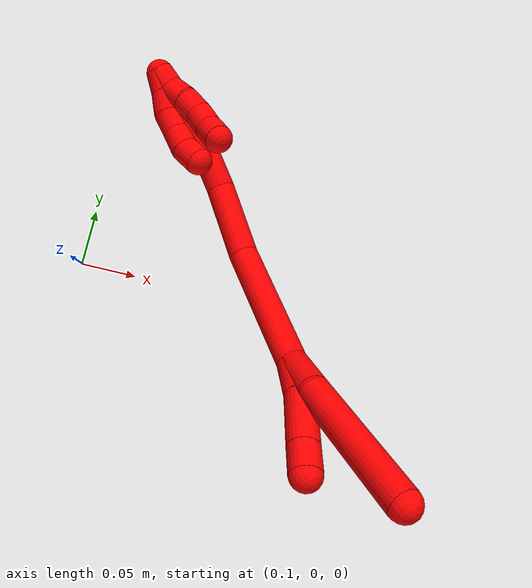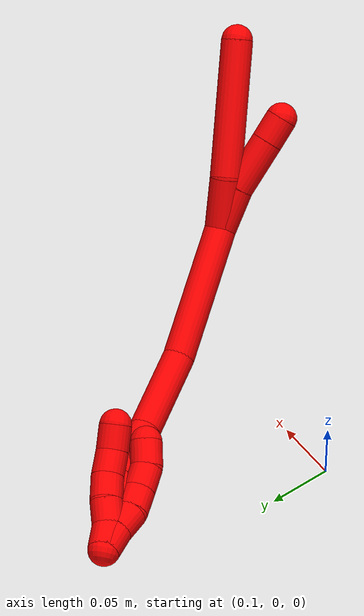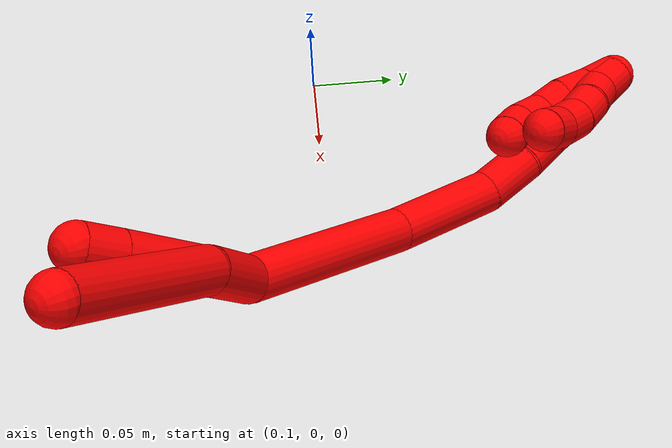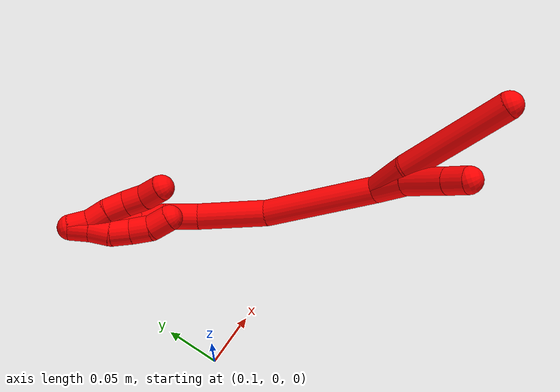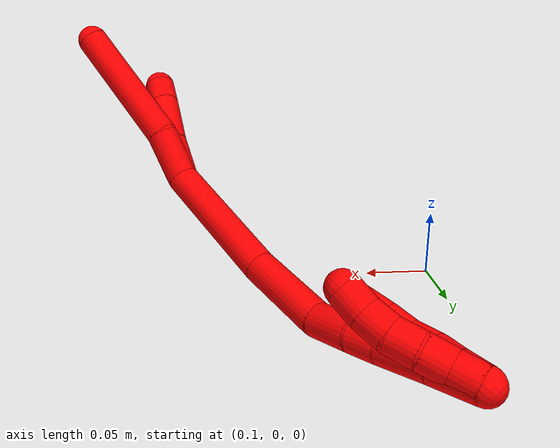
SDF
<sdf version="1.7">
 <world name="default">
  <model name="2">
   <static>0</static>
   <link name="2">
    <collision name="collision-cylinder-e_1_2_8">
     <pose>-0.007889 0.006279 0.018081 -0.334264 -0.390944 0.066783</pose>
     <geometry><cylinder><radius>0.0125</radius><length>0.041405</length></cylinder></geometry>
     <surface>
      <friction><ode><mu>1.16</mu><mu2>1.16</mu2><slip1>0</slip1><slip2>0</slip2></ode></friction>
      <contact><ode><kp>1e+06</kp><kd>1</kd><max_vel>0</max_vel><min_depth>0.001</min_depth></ode></contact>
     </surface>
    </collision>
    <visual name="visual-cylinder-e_1_2_8">
     <pose>-0.007889 0.006279 0.018081 -0.334264 -0.390944 0.066783</pose>
     <geometry><cylinder><radius>0.0125</radius><length>0.041405</length></cylinder></geometry>
     <material><ambient>1 0 0 1</ambient></material>
    </visual>
    <collision name="collision-cylinder-e_2_8_6">
     <pose>-0.025904 0.024515 0.08815 -0.226039 -0.187599 0.021355</pose>
     <geometry><cylinder><radius>0.0125</radius><length>0.108595</length></cylinder></geometry>
     <surface>
      <friction><ode><mu>1.16</mu><mu2>1.16</mu2><slip1>0</slip1><slip2>0</slip2></ode></friction>
      <contact><ode><kp>1e+06</kp><kd>1</kd><max_vel>0</max_vel><min_depth>0.001</min_depth></ode></contact>
     </surface>
    </collision>
    <visual name="visual-cylinder-e_2_8_6">
     <pose>-0.025904 0.024515 0.08815 -0.226039 -0.187599 0.021355</pose>
     <geometry><cylinder><radius>0.0125</radius><length>0.108595</length></cylinder></geometry>
     <material><ambient>1 0 0 1</ambient></material>
    </visual>
    <collision name="collision-cylinder-e_1_2_9">
     <pose>-0.007754 0.000157 0.015743 -0.00999 -0.457651 0.002327</pose>
     <geometry><cylinder><radius>0.0125</radius><length>0.0351</length></cylinder></geometry>
     <surface>
      <friction><ode><mu>1.16</mu><mu2>1.16</mu2><slip1>0</slip1><slip2>0</slip2></ode></friction>
      <contact><ode><kp>1e+06</kp><kd>1</kd><max_vel>0</max_vel><min_depth>0.001</min_depth></ode></contact>
     </surface>
    </collision>
    <visual name="visual-cylinder-e_1_2_9">
     <pose>-0.007754 0.000157 0.015743 -0.00999 -0.457651 0.002327</pose>
     <geometry><cylinder><radius>0.0125</radius><length>0.0351</length></cylinder></geometry>
     <material><ambient>1 0 0 1</ambient></material>
    </visual>
    <collision name="collision-cylinder-e_2_9_10">
     <pose>-0.025437 -0.003348 0.050407 0.191234 -0.475718 -0.046498</pose>
     <geometry><cylinder><radius>0.0125</radius><length>0.043358</length></cylinder></geometry>
     <surface>
      <friction><ode><mu>1.16</mu><mu2>1.16</mu2><slip1>0</slip1><slip2>0</slip2></ode></friction>
      <contact><ode><kp>1e+06</kp><kd>1</kd><max_vel>0</max_vel><min_depth>0.001</min_depth></ode></contact>
     </surface>
    </collision>
    <visual name="visual-cylinder-e_2_9_10">
     <pose>-0.025437 -0.003348 0.050407 0.191234 -0.475718 -0.046498</pose>
     <geometry><cylinder><radius>0.0125</radius><length>0.043358</length></cylinder></geometry>
     <material><ambient>1 0 0 1</ambient></material>
    </visual>
    <collision name="collision-cylinder-e_3_10_5">
     <pose>-0.040139 -0.008804 0.078815 0.186784 -0.459133 -0.043769</pose>
     <geometry><cylinder><radius>0.0125</radius><length>0.021542</length></cylinder></geometry>
     <surface>
      <friction><ode><mu>1.16</mu><mu2>1.16</mu2><slip1>0</slip1><slip2>0</slip2></ode></friction>
      <contact><ode><kp>1e+06</kp><kd>1</kd><max_vel>0</max_vel><min_depth>0.001</min_depth></ode></contact>
     </surface>
    </collision>
    <visual name="visual-cylinder-e_3_10_5">
     <pose>-0.040139 -0.008804 0.078815 0.186784 -0.459133 -0.043769</pose>
     <geometry><cylinder><radius>0.0125</radius><length>0.021542</length></cylinder></geometry>
     <material><ambient>1 0 0 1</ambient></material>
    </visual>
    <collision name="collision-cylinder-e_1_2_11">
     <pose>0.003623 0.006092 -0.054379 -3.03002 0.066113 -1.06928</pose>
     <geometry><cylinder><radius>0.0125</radius><length>0.109678</length></cylinder></geometry>
     <surface>
      <friction><ode><mu>1.16</mu><mu2>1.16</mu2><slip1>0</slip1><slip2>0</slip2></ode></friction>
      <contact><ode><kp>1e+06</kp><kd>1</kd><max_vel>0</max_vel><min_depth>0.001</min_depth></ode></contact>
     </surface>
    </collision>
    <visual name="visual-cylinder-e_1_2_11">
     <pose>0.003623 0.006092 -0.054379 -3.03002 0.066113 -1.06928</pose>
     <geometry><cylinder><radius>0.0125</radius><length>0.109678</length></cylinder></geometry>
     <material><ambient>1 0 0 1</ambient></material>
    </visual>
    <collision name="collision-cylinder-e_2_11_12">
     <pose>0.005631 0.022044 -0.141027 -2.84507 -0.04781 0.317472</pose>
     <geometry><cylinder><radius>0.0125</radius><length>0.067559</length></cylinder></geometry>
     <surface>
      <friction><ode><mu>1.16</mu><mu2>1.16</mu2><slip1>0</slip1><slip2>0</slip2></ode></friction>
      <contact><ode><kp>1e+06</kp><kd>1</kd><max_vel>0</max_vel><min_depth>0.001</min_depth></ode></contact>
     </surface>
    </collision>
    <visual name="visual-cylinder-e_2_11_12">
     <pose>0.005631 0.022044 -0.141027 -2.84507 -0.04781 0.317472</pose>
     <geometry><cylinder><radius>0.0125</radius><length>0.067559</length></cylinder></geometry>
     <material><ambient>1 0 0 1</ambient></material>
    </visual>
    <collision name="collision-cylinder-e_3_12_13">
     <pose>-0.001177 0.038362 -0.187176 -2.70607 -0.327081 1.28157</pose>
     <geometry><cylinder><radius>0.0125</radius><length>0.032334</length></cylinder></geometry>
     <surface>
      <friction><ode><mu>1.16</mu><mu2>1.16</mu2><slip1>0</slip1><slip2>0</slip2></ode></friction>
      <contact><ode><kp>1e+06</kp><kd>1</kd><max_vel>0</max_vel><min_depth>0.001</min_depth></ode></contact>
     </surface>
    </collision>
    <visual name="visual-cylinder-e_3_12_13">
     <pose>-0.001177 0.038362 -0.187176 -2.70607 -0.327081 1.28157</pose>
     <geometry><cylinder><radius>0.0125</radius><length>0.032334</length></cylinder></geometry>
     <material><ambient>1 0 0 1</ambient></material>
    </visual>
    <collision name="collision-cylinder-e_4_13_14">
     <pose>-0.010185 0.04758 -0.210812 -2.86597 -0.359785 1.83853</pose>
     <geometry><cylinder><radius>0.0125</radius><length>0.021664</length></cylinder></geometry>
     <surface>
      <friction><ode><mu>1.16</mu><mu2>1.16</mu2><slip1>0</slip1><slip2>0</slip2></ode></friction>
      <contact><ode><kp>1e+06</kp><kd>1</kd><max_vel>0</max_vel><min_depth>0.001</min_depth></ode></contact>
     </surface>
    </collision>
    <visual name="visual-cylinder-e_4_13_14">
     <pose>-0.010185 0.04758 -0.210812 -2.86597 -0.359785 1.83853</pose>
     <geometry><cylinder><radius>0.0125</radius><length>0.021664</length></cylinder></geometry>
     <material><ambient>1 0 0 1</ambient></material>
    </visual>
    <collision name="collision-cylinder-e_5_14_15">
     <pose>-0.020662 0.056408 -0.236239 -2.77211 -0.377513 1.59279</pose>
     <geometry><cylinder><radius>0.0125</radius><length>0.036158</length></cylinder></geometry>
     <surface>
      <friction><ode><mu>1.16</mu><mu2>1.16</mu2><slip1>0</slip1><slip2>0</slip2></ode></friction>
      <contact><ode><kp>1e+06</kp><kd>1</kd><max_vel>0</max_vel><min_depth>0.001</min_depth></ode></contact>
     </surface>
    </collision>
    <visual name="visual-cylinder-e_5_14_15">
     <pose>-0.020662 0.056408 -0.236239 -2.77211 -0.377513 1.59279</pose>
     <geometry><cylinder><radius>0.0125</radius><length>0.036158</length></cylinder></geometry>
     <material><ambient>1 0 0 1</ambient></material>
    </visual>
    <collision name="collision-cylinder-e_6_15_1">
     <pose>-0.033124 0.066798 -0.266524 -2.85407 -0.363549 1.80736</pose>
     <geometry><cylinder><radius>0.0125</radius><length>0.032608</length></cylinder></geometry>
     <surface>
      <friction><ode><mu>1.16</mu><mu2>1.16</mu2><slip1>0</slip1><slip2>0</slip2></ode></friction>
      <contact><ode><kp>1e+06</kp><kd>1</kd><max_vel>0</max_vel><min_depth>0.001</min_depth></ode></contact>
     </surface>
    </collision>
    <visual name="visual-cylinder-e_6_15_1">
     <pose>-0.033124 0.066798 -0.266524 -2.85407 -0.363549 1.80736</pose>
     <geometry><cylinder><radius>0.0125</radius><length>0.032608</length></cylinder></geometry>
     <material><ambient>1 0 0 1</ambient></material>
    </visual>
    <collision name="collision-cylinder-e_1_1_16">
     <pose>-0.036362 0.069656 -0.271581 0.151926 0.25883 0.01981</pose>
     <geometry><cylinder><radius>0.0125</radius><length>0.02</length></cylinder></geometry>
     <surface>
      <friction><ode><mu>1.16</mu><mu2>1.16</mu2><slip1>0</slip1><slip2>0</slip2></ode></friction>
      <contact><ode><kp>1e+06</kp><kd>1</kd><max_vel>0</max_vel><min_depth>0.001</min_depth></ode></contact>
     </surface>
    </collision>
    <visual name="visual-cylinder-e_1_1_16">
     <pose>-0.036362 0.069656 -0.271581 0.151926 0.25883 0.01981</pose>
     <geometry><cylinder><radius>0.0125</radius><length>0.02</length></cylinder></geometry>
     <material><ambient>1 0 0 1</ambient></material>
    </visual>
    <collision name="collision-cylinder-e_2_16_17">
     <pose>-0.031422 0.069879 -0.25246 -0.174402 0.240345 -0.021113</pose>
     <geometry><cylinder><radius>0.0125</radius><length>0.02</length></cylinder></geometry>
     <surface>
      <friction><ode><mu>1.16</mu><mu2>1.16</mu2><slip1>0</slip1><slip2>0</slip2></ode></friction>
      <contact><ode><kp>1e+06</kp><kd>1</kd><max_vel>0</max_vel><min_depth>0.001</min_depth></ode></contact>
     </surface>
    </collision>
    <visual name="visual-cylinder-e_2_16_17">
     <pose>-0.031422 0.069879 -0.25246 -0.174402 0.240345 -0.021113</pose>
     <geometry><cylinder><radius>0.0125</radius><length>0.02</length></cylinder></geometry>
     <material><ambient>1 0 0 1</ambient></material>
    </visual>
    <collision name="collision-cylinder-e_3_17_18">
     <pose>-0.026455 0.071578 -0.233235 -0.001459 0.261636 -0.000192</pose>
     <geometry><cylinder><radius>0.0125</radius><length>0.02</length></cylinder></geometry>
     <surface>
      <friction><ode><mu>1.16</mu><mu2>1.16</mu2><slip1>0</slip1><slip2>0</slip2></ode></friction>
      <contact><ode><kp>1e+06</kp><kd>1</kd><max_vel>0</max_vel><min_depth>0.001</min_depth></ode></contact>
     </surface>
    </collision>
    <visual name="visual-cylinder-e_3_17_18">
     <pose>-0.026455 0.071578 -0.233235 -0.001459 0.261636 -0.000192</pose>
     <geometry><cylinder><radius>0.0125</radius><length>0.02</length></cylinder></geometry>
     <material><ambient>1 0 0 1</ambient></material>
    </visual>
    <collision name="collision-cylinder-e_4_18_19">
     <pose>-0.023395 0.071296 -0.213591 0.02967 0.047361 0.000703</pose>
     <geometry><cylinder><radius>0.0125</radius><length>0.02</length></cylinder></geometry>
     <surface>
      <friction><ode><mu>1.16</mu><mu2>1.16</mu2><slip1>0</slip1><slip2>0</slip2></ode></friction>
      <contact><ode><kp>1e+06</kp><kd>1</kd><max_vel>0</max_vel><min_depth>0.001</min_depth></ode></contact>
     </surface>
    </collision>
    <visual name="visual-cylinder-e_4_18_19">
     <pose>-0.023395 0.071296 -0.213591 0.02967 0.047361 0.000703</pose>
     <geometry><cylinder><radius>0.0125</radius><length>0.02</length></cylinder></geometry>
     <material><ambient>1 0 0 1</ambient></material>
    </visual>
    <collision name="collision-cylinder-e_5_19_4">
     <pose>-0.024161 0.072421 -0.193786 -0.14372 -0.124285 0.008958</pose>
     <geometry><cylinder><radius>0.0125</radius><length>0.02</length></cylinder></geometry>
     <surface>
      <friction><ode><mu>1.16</mu><mu2>1.16</mu2><slip1>0</slip1><slip2>0</slip2></ode></friction>
      <contact><ode><kp>1e+06</kp><kd>1</kd><max_vel>0</max_vel><min_depth>0.001</min_depth></ode></contact>
     </surface>
    </collision>
    <visual name="visual-cylinder-e_5_19_4">
     <pose>-0.024161 0.072421 -0.193786 -0.14372 -0.124285 0.008958</pose>
     <geometry><cylinder><radius>0.0125</radius><length>0.02</length></cylinder></geometry>
     <material><ambient>1 0 0 1</ambient></material>
    </visual>
    <collision name="collision-cylinder-e_1_1_20">
     <pose>-0.037416 0.066677 -0.272304 0.466031 0.1511 0.035925</pose>
     <geometry><cylinder><radius>0.0125</radius><length>0.02</length></cylinder></geometry>
     <surface>
      <friction><ode><mu>1.16</mu><mu2>1.16</mu2><slip1>0</slip1><slip2>0</slip2></ode></friction>
      <contact><ode><kp>1e+06</kp><kd>1</kd><max_vel>0</max_vel><min_depth>0.001</min_depth></ode></contact>
     </surface>
    </collision>
    <visual name="visual-cylinder-e_1_1_20">
     <pose>-0.037416 0.066677 -0.272304 0.466031 0.1511 0.035925</pose>
     <geometry><cylinder><radius>0.0125</radius><length>0.02</length></cylinder></geometry>
     <material><ambient>1 0 0 1</ambient></material>
    </visual>
    <collision name="collision-cylinder-e_2_20_21">
     <pose>-0.034912 0.056767 -0.255159 0.581757 0.100048 0.029974</pose>
     <geometry><cylinder><radius>0.0125</radius><length>0.02</length></cylinder></geometry>
     <surface>
      <friction><ode><mu>1.16</mu><mu2>1.16</mu2><slip1>0</slip1><slip2>0</slip2></ode></friction>
      <contact><ode><kp>1e+06</kp><kd>1</kd><max_vel>0</max_vel><min_depth>0.001</min_depth></ode></contact>
     </surface>
    </collision>
    <visual name="visual-cylinder-e_2_20_21">
     <pose>-0.034912 0.056767 -0.255159 0.581757 0.100048 0.029974</pose>
     <geometry><cylinder><radius>0.0125</radius><length>0.02</length></cylinder></geometry>
     <material><ambient>1 0 0 1</ambient></material>
    </visual>
    <collision name="collision-cylinder-e_3_21_22">
     <pose>-0.031441 0.04847 -0.237579 0.296424 0.249804 0.037488</pose>
     <geometry><cylinder><radius>0.0125</radius><length>0.02</length></cylinder></geometry>
     <surface>
      <friction><ode><mu>1.16</mu><mu2>1.16</mu2><slip1>0</slip1><slip2>0</slip2></ode></friction>
      <contact><ode><kp>1e+06</kp><kd>1</kd><max_vel>0</max_vel><min_depth>0.001</min_depth></ode></contact>
     </surface>
    </collision>
    <visual name="visual-cylinder-e_3_21_22">
     <pose>-0.031441 0.04847 -0.237579 0.296424 0.249804 0.037488</pose>
     <geometry><cylinder><radius>0.0125</radius><length>0.02</length></cylinder></geometry>
     <material><ambient>1 0 0 1</ambient></material>
    </visual>
    <collision name="collision-cylinder-e_4_22_23">
     <pose>-0.028109 0.043724 -0.218535 0.193468 0.086076 0.008358</pose>
     <geometry><cylinder><radius>0.0125</radius><length>0.02</length></cylinder></geometry>
     <surface>
      <friction><ode><mu>1.16</mu><mu2>1.16</mu2><slip1>0</slip1><slip2>0</slip2></ode></friction>
      <contact><ode><kp>1e+06</kp><kd>1</kd><max_vel>0</max_vel><min_depth>0.001</min_depth></ode></contact>
     </surface>
    </collision>
    <visual name="visual-cylinder-e_4_22_23">
     <pose>-0.028109 0.043724 -0.218535 0.193468 0.086076 0.008358</pose>
     <geometry><cylinder><radius>0.0125</radius><length>0.02</length></cylinder></geometry>
     <material><ambient>1 0 0 1</ambient></material>
    </visual>
    <collision name="collision-cylinder-e_5_23_3">
     <pose>-0.02573 0.043181 -0.19897 -0.13938 0.152523 -0.010667</pose>
     <geometry><cylinder><radius>0.0125</radius><length>0.02</length></cylinder></geometry>
     <surface>
      <friction><ode><mu>1.16</mu><mu2>1.16</mu2><slip1>0</slip1><slip2>0</slip2></ode></friction>
      <contact><ode><kp>1e+06</kp><kd>1</kd><max_vel>0</max_vel><min_depth>0.001</min_depth></ode></contact>
     </surface>
    </collision>
    <visual name="visual-cylinder-e_5_23_3">
     <pose>-0.02573 0.043181 -0.19897 -0.13938 0.152523 -0.010667</pose>
     <geometry><cylinder><radius>0.0125</radius><length>0.02</length></cylinder></geometry>
     <material><ambient>1 0 0 1</ambient></material>
    </visual>
    <collision name="collision-sphere-3">
     <pose>-0.024211 0.044555 -0.189182 0 -0 0</pose>
     <geometry><sphere><radius>0.0125</radius></sphere></geometry>
     <surface>
      <friction><ode><mu>1.16</mu><mu2>1.16</mu2><slip1>0</slip1><slip2>0</slip2></ode></friction>
      <contact><ode><kp>1e+06</kp><kd>1</kd><max_vel>0</max_vel><min_depth>0.001</min_depth></ode></contact>
     </surface>
    </collision>
    <visual name="visual-sphere-3">
     <pose>-0.024211 0.044555 -0.189182 0 -0 0</pose>
     <geometry><sphere><radius>0.0125</radius></sphere></geometry>
     <material><ambient>1 0 0 1</ambient></material>
    </visual>
    <collision name="collision-sphere-23">
     <pose>-0.02725 0.041808 -0.208758 0 -0 0</pose>
     <geometry><sphere><radius>0.0125</radius></sphere></geometry>
     <surface>
      <friction><ode><mu>1.16</mu><mu2>1.16</mu2><slip1>0</slip1><slip2>0</slip2></ode></friction>
      <contact><ode><kp>1e+06</kp><kd>1</kd><max_vel>0</max_vel><min_depth>0.001</min_depth></ode></contact>
     </surface>
    </collision>
    <visual name="visual-sphere-23">
     <pose>-0.02725 0.041808 -0.208758 0 -0 0</pose>
     <geometry><sphere><radius>0.0125</radius></sphere></geometry>
     <material><ambient>1 0 0 1</ambient></material>
    </visual>
    <collision name="collision-sphere-22">
     <pose>-0.028969 0.045639 -0.228312 0 -0 0</pose>
     <geometry><sphere><radius>0.0125</radius></sphere></geometry>
     <surface>
      <friction><ode><mu>1.16</mu><mu2>1.16</mu2><slip1>0</slip1><slip2>0</slip2></ode></friction>
      <contact><ode><kp>1e+06</kp><kd>1</kd><max_vel>0</max_vel><min_depth>0.001</min_depth></ode></contact>
     </surface>
    </collision>
    <visual name="visual-sphere-22">
     <pose>-0.028969 0.045639 -0.228312 0 -0 0</pose>
     <geometry><sphere><radius>0.0125</radius></sphere></geometry>
     <material><ambient>1 0 0 1</ambient></material>
    </visual>
    <collision name="collision-sphere-21">
     <pose>-0.033913 0.0513 -0.246846 0 -0 0</pose>
     <geometry><sphere><radius>0.0125</radius></sphere></geometry>
     <surface>
      <friction><ode><mu>1.16</mu><mu2>1.16</mu2><slip1>0</slip1><slip2>0</slip2></ode></friction>
      <contact><ode><kp>1e+06</kp><kd>1</kd><max_vel>0</max_vel><min_depth>0.001</min_depth></ode></contact>
     </surface>
    </collision>
    <visual name="visual-sphere-21">
     <pose>-0.033913 0.0513 -0.246846 0 -0 0</pose>
     <geometry><sphere><radius>0.0125</radius></sphere></geometry>
     <material><ambient>1 0 0 1</ambient></material>
    </visual>
    <collision name="collision-sphere-20">
     <pose>-0.035911 0.062235 -0.263473 0 -0 0</pose>
     <geometry><sphere><radius>0.0125</radius></sphere></geometry>
     <surface>
      <friction><ode><mu>1.16</mu><mu2>1.16</mu2><slip1>0</slip1><slip2>0</slip2></ode></friction>
      <contact><ode><kp>1e+06</kp><kd>1</kd><max_vel>0</max_vel><min_depth>0.001</min_depth></ode></contact>
     </surface>
    </collision>
    <visual name="visual-sphere-20">
     <pose>-0.035911 0.062235 -0.263473 0 -0 0</pose>
     <geometry><sphere><radius>0.0125</radius></sphere></geometry>
     <material><ambient>1 0 0 1</ambient></material>
    </visual>
    <collision name="collision-sphere-4">
     <pose>-0.025401 0.073842 -0.183965 0 -0 0</pose>
     <geometry><sphere><radius>0.0125</radius></sphere></geometry>
     <surface>
      <friction><ode><mu>1.16</mu><mu2>1.16</mu2><slip1>0</slip1><slip2>0</slip2></ode></friction>
      <contact><ode><kp>1e+06</kp><kd>1</kd><max_vel>0</max_vel><min_depth>0.001</min_depth></ode></contact>
     </surface>
    </collision>
    <visual name="visual-sphere-4">
     <pose>-0.025401 0.073842 -0.183965 0 -0 0</pose>
     <geometry><sphere><radius>0.0125</radius></sphere></geometry>
     <material><ambient>1 0 0 1</ambient></material>
    </visual>
    <collision name="collision-sphere-5">
     <pose>-0.044912 -0.010597 0.088303 0 -0 0</pose>
     <geometry><sphere><radius>0.0125</radius></sphere></geometry>
     <surface>
      <friction><ode><mu>1.16</mu><mu2>1.16</mu2><slip1>0</slip1><slip2>0</slip2></ode></friction>
      <contact><ode><kp>1e+06</kp><kd>1</kd><max_vel>0</max_vel><min_depth>0.001</min_depth></ode></contact>
     </surface>
    </collision>
    <visual name="visual-sphere-5">
     <pose>-0.044912 -0.010597 0.088303 0 -0 0</pose>
     <geometry><sphere><radius>0.0125</radius></sphere></geometry>
     <material><ambient>1 0 0 1</ambient></material>
    </visual>
    <collision name="collision-sphere-10">
     <pose>-0.035366 -0.007011 0.069327 0 -0 0</pose>
     <geometry><sphere><radius>0.0125</radius></sphere></geometry>
     <surface>
      <friction><ode><mu>1.16</mu><mu2>1.16</mu2><slip1>0</slip1><slip2>0</slip2></ode></friction>
      <contact><ode><kp>1e+06</kp><kd>1</kd><max_vel>0</max_vel><min_depth>0.001</min_depth></ode></contact>
     </surface>
    </collision>
    <visual name="visual-sphere-10">
     <pose>-0.035366 -0.007011 0.069327 0 -0 0</pose>
     <geometry><sphere><radius>0.0125</radius></sphere></geometry>
     <material><ambient>1 0 0 1</ambient></material>
    </visual>
    <collision name="collision-sphere-6">
     <pose>-0.036031 0.03647 0.140138 0 -0 0</pose>
     <geometry><sphere><radius>0.0125</radius></sphere></geometry>
     <surface>
      <friction><ode><mu>1.16</mu><mu2>1.16</mu2><slip1>0</slip1><slip2>0</slip2></ode></friction>
      <contact><ode><kp>1e+06</kp><kd>1</kd><max_vel>0</max_vel><min_depth>0.001</min_depth></ode></contact>
     </surface>
    </collision>
    <visual name="visual-sphere-6">
     <pose>-0.036031 0.03647 0.140138 0 -0 0</pose>
     <geometry><sphere><radius>0.0125</radius></sphere></geometry>
     <material><ambient>1 0 0 1</ambient></material>
    </visual>
    <collision name="collision-sphere-9">
     <pose>-0.015509 0.000315 0.031487 0 -0 0</pose>
     <geometry><sphere><radius>0.0125</radius></sphere></geometry>
     <surface>
      <friction><ode><mu>1.16</mu><mu2>1.16</mu2><slip1>0</slip1><slip2>0</slip2></ode></friction>
      <contact><ode><kp>1e+06</kp><kd>1</kd><max_vel>0</max_vel><min_depth>0.001</min_depth></ode></contact>
     </surface>
    </collision>
    <visual name="visual-sphere-9">
     <pose>-0.015509 0.000315 0.031487 0 -0 0</pose>
     <geometry><sphere><radius>0.0125</radius></sphere></geometry>
     <material><ambient>1 0 0 1</ambient></material>
    </visual>
    <collision name="collision-sphere-2">
     <geometry><sphere><radius>0.0125</radius></sphere></geometry>
     <surface>
      <friction><ode><mu>1.16</mu><mu2>1.16</mu2><slip1>0</slip1><slip2>0</slip2></ode></friction>
      <contact><ode><kp>1e+06</kp><kd>1</kd><max_vel>0</max_vel><min_depth>0.001</min_depth></ode></contact>
     </surface>
    </collision>
    <visual name="visual-sphere-2">
     <geometry><sphere><radius>0.0125</radius></sphere></geometry>
     <material><ambient>1 0 0 1</ambient></material>
    </visual>
    <collision name="collision-sphere-19">
     <pose>-0.022922 0.070999 -0.203607 0 -0 0</pose>
     <geometry><sphere><radius>0.0125</radius></sphere></geometry>
     <surface>
      <friction><ode><mu>1.16</mu><mu2>1.16</mu2><slip1>0</slip1><slip2>0</slip2></ode></friction>
      <contact><ode><kp>1e+06</kp><kd>1</kd><max_vel>0</max_vel><min_depth>0.001</min_depth></ode></contact>
     </surface>
    </collision>
    <visual name="visual-sphere-19">
     <pose>-0.022922 0.070999 -0.203607 0 -0 0</pose>
     <geometry><sphere><radius>0.0125</radius></sphere></geometry>
     <material><ambient>1 0 0 1</ambient></material>
    </visual>
    <collision name="collision-sphere-8">
     <pose>-0.015778 0.012559 0.036162 0 -0 0</pose>
     <geometry><sphere><radius>0.0125</radius></sphere></geometry>
     <surface>
      <friction><ode><mu>1.16</mu><mu2>1.16</mu2><slip1>0</slip1><slip2>0</slip2></ode></friction>
      <contact><ode><kp>1e+06</kp><kd>1</kd><max_vel>0</max_vel><min_depth>0.001</min_depth></ode></contact>
     </surface>
    </collision>
    <visual name="visual-sphere-8">
     <pose>-0.015778 0.012559 0.036162 0 -0 0</pose>
     <geometry><sphere><radius>0.0125</radius></sphere></geometry>
     <material><ambient>1 0 0 1</ambient></material>
    </visual>
    <collision name="collision-sphere-11">
     <pose>0.007246 0.012185 -0.108758 0 -0 0</pose>
     <geometry><sphere><radius>0.0125</radius></sphere></geometry>
     <surface>
      <friction><ode><mu>1.16</mu><mu2>1.16</mu2><slip1>0</slip1><slip2>0</slip2></ode></friction>
      <contact><ode><kp>1e+06</kp><kd>1</kd><max_vel>0</max_vel><min_depth>0.001</min_depth></ode></contact>
     </surface>
    </collision>
    <visual name="visual-sphere-11">
     <pose>0.007246 0.012185 -0.108758 0 -0 0</pose>
     <geometry><sphere><radius>0.0125</radius></sphere></geometry>
     <material><ambient>1 0 0 1</ambient></material>
    </visual>
    <collision name="collision-sphere-12">
     <pose>0.004017 0.031903 -0.173295 0 -0 0</pose>
     <geometry><sphere><radius>0.0125</radius></sphere></geometry>
     <surface>
      <friction><ode><mu>1.16</mu><mu2>1.16</mu2><slip1>0</slip1><slip2>0</slip2></ode></friction>
      <contact><ode><kp>1e+06</kp><kd>1</kd><max_vel>0</max_vel><min_depth>0.001</min_depth></ode></contact>
     </surface>
    </collision>
    <visual name="visual-sphere-12">
     <pose>0.004017 0.031903 -0.173295 0 -0 0</pose>
     <geometry><sphere><radius>0.0125</radius></sphere></geometry>
     <material><ambient>1 0 0 1</ambient></material>
    </visual>
    <collision name="collision-sphere-13">
     <pose>-0.006371 0.04482 -0.201056 0 -0 0</pose>
     <geometry><sphere><radius>0.0125</radius></sphere></geometry>
     <surface>
      <friction><ode><mu>1.16</mu><mu2>1.16</mu2><slip1>0</slip1><slip2>0</slip2></ode></friction>
      <contact><ode><kp>1e+06</kp><kd>1</kd><max_vel>0</max_vel><min_depth>0.001</min_depth></ode></contact>
     </surface>
    </collision>
    <visual name="visual-sphere-13">
     <pose>-0.006371 0.04482 -0.201056 0 -0 0</pose>
     <geometry><sphere><radius>0.0125</radius></sphere></geometry>
     <material><ambient>1 0 0 1</ambient></material>
    </visual>
    <collision name="collision-sphere-14">
     <pose>-0.013998 0.050339 -0.220568 0 -0 0</pose>
     <geometry><sphere><radius>0.0125</radius></sphere></geometry>
     <surface>
      <friction><ode><mu>1.16</mu><mu2>1.16</mu2><slip1>0</slip1><slip2>0</slip2></ode></friction>
      <contact><ode><kp>1e+06</kp><kd>1</kd><max_vel>0</max_vel><min_depth>0.001</min_depth></ode></contact>
     </surface>
    </collision>
    <visual name="visual-sphere-14">
     <pose>-0.013998 0.050339 -0.220568 0 -0 0</pose>
     <geometry><sphere><radius>0.0125</radius></sphere></geometry>
     <material><ambient>1 0 0 1</ambient></material>
    </visual>
    <collision name="collision-sphere-15">
     <pose>-0.027326 0.062477 -0.251911 0 -0 0</pose>
     <geometry><sphere><radius>0.0125</radius></sphere></geometry>
     <surface>
      <friction><ode><mu>1.16</mu><mu2>1.16</mu2><slip1>0</slip1><slip2>0</slip2></ode></friction>
      <contact><ode><kp>1e+06</kp><kd>1</kd><max_vel>0</max_vel><min_depth>0.001</min_depth></ode></contact>
     </surface>
    </collision>
    <visual name="visual-sphere-15">
     <pose>-0.027326 0.062477 -0.251911 0 -0 0</pose>
     <geometry><sphere><radius>0.0125</radius></sphere></geometry>
     <material><ambient>1 0 0 1</ambient></material>
    </visual>
    <collision name="collision-sphere-1">
     <pose>-0.038921 0.071119 -0.281136 0 -0 0</pose>
     <geometry><sphere><radius>0.0125</radius></sphere></geometry>
     <surface>
      <friction><ode><mu>1.16</mu><mu2>1.16</mu2><slip1>0</slip1><slip2>0</slip2></ode></friction>
      <contact><ode><kp>1e+06</kp><kd>1</kd><max_vel>0</max_vel><min_depth>0.001</min_depth></ode></contact>
     </surface>
    </collision>
    <visual name="visual-sphere-1">
     <pose>-0.038921 0.071119 -0.281136 0 -0 0</pose>
     <geometry><sphere><radius>0.0125</radius></sphere></geometry>
     <material><ambient>1 0 0 1</ambient></material>
    </visual>
    <collision name="collision-sphere-18">
     <pose>-0.023868 0.071592 -0.223575 0 -0 0</pose>
     <geometry><sphere><radius>0.0125</radius></sphere></geometry>
     <surface>
      <friction><ode><mu>1.16</mu><mu2>1.16</mu2><slip1>0</slip1><slip2>0</slip2></ode></friction>
      <contact><ode><kp>1e+06</kp><kd>1</kd><max_vel>0</max_vel><min_depth>0.001</min_depth></ode></contact>
     </surface>
    </collision>
    <visual name="visual-sphere-18">
     <pose>-0.023868 0.071592 -0.223575 0 -0 0</pose>
     <geometry><sphere><radius>0.0125</radius></sphere></geometry>
     <material><ambient>1 0 0 1</ambient></material>
    </visual>
    <collision name="collision-sphere-16">
     <pose>-0.033802 0.068193 -0.262025 0 -0 0</pose>
     <geometry><sphere><radius>0.0125</radius></sphere></geometry>
     <surface>
      <friction><ode><mu>1.16</mu><mu2>1.16</mu2><slip1>0</slip1><slip2>0</slip2></ode></friction>
      <contact><ode><kp>1e+06</kp><kd>1</kd><max_vel>0</max_vel><min_depth>0.001</min_depth></ode></contact>
     </surface>
    </collision>
    <visual name="visual-sphere-16">
     <pose>-0.033802 0.068193 -0.262025 0 -0 0</pose>
     <geometry><sphere><radius>0.0125</radius></sphere></geometry>
     <material><ambient>1 0 0 1</ambient></material>
    </visual>
    <collision name="collision-sphere-17">
     <pose>-0.029042 0.071564 -0.242895 0 -0 0</pose>
     <geometry><sphere><radius>0.0125</radius></sphere></geometry>
     <surface>
      <friction><ode><mu>1.16</mu><mu2>1.16</mu2><slip1>0</slip1><slip2>0</slip2></ode></friction>
      <contact><ode><kp>1e+06</kp><kd>1</kd><max_vel>0</max_vel><min_depth>0.001</min_depth></ode></contact>
     </surface>
    </collision>
    <visual name="visual-sphere-17">
     <pose>-0.029042 0.071564 -0.242895 0 -0 0</pose>
     <geometry><sphere><radius>0.0125</radius></sphere></geometry>
     <material><ambient>1 0 0 1</ambient></material>
    </visual>
    <inertial>
     <pose>-0.016901 0.031349 -0.100707 0 -0 0</pose>
     <mass>0.75</mass>
     <inertia><ixx>0.000143</ixx><ixy>0</ixy><ixz>0</ixz><iyy>-2e-06</iyy><iyz>0</iyz><izz>-1.1e-05</izz></inertia>
    </inertial>
   </link>
   <pose>0.298386 -0.043991 0.071578 0.904009 0.801216 0.237886</pose>
  </model>
 </world>
</sdf>
